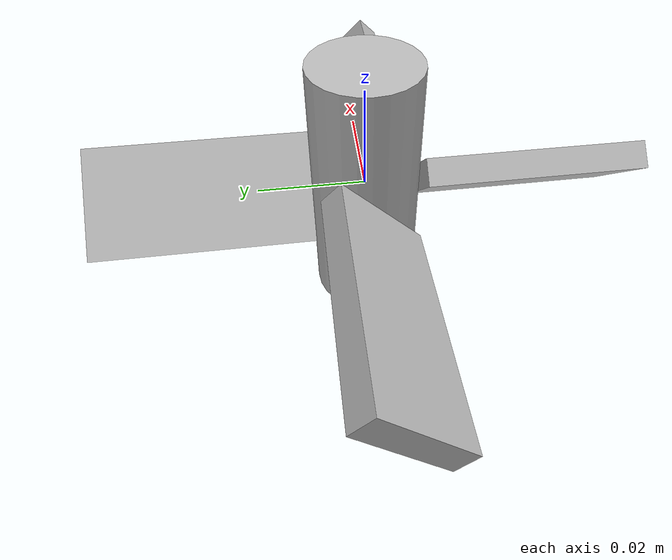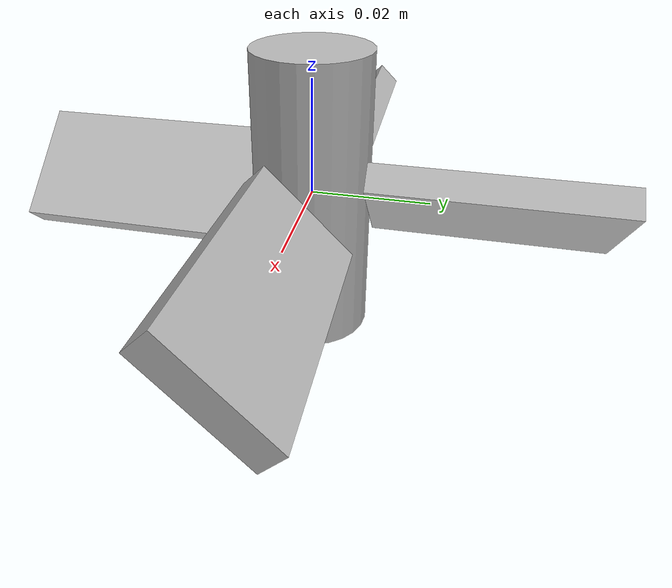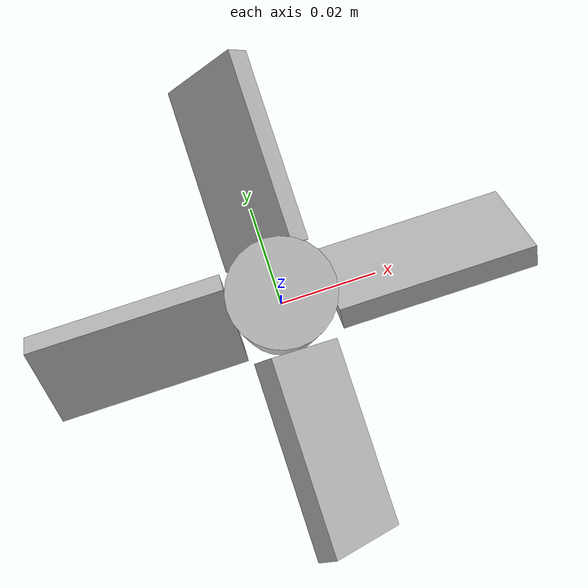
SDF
<?xml version="1.0" ?>
<sdf version="1.6">
  <world name="buoyancy">
    <model name="thruster">
      <pose>0 0 0 3.141592 0 0</pose>
      <link name='thruster_body'>
        <pose>0 0 0 0 0 0</pose>
        <inertial>
          <mass>0.5</mass>
          <inertia>
            <ixx>0.269653369</ixx>
            <ixy>0</ixy>
            <ixz>0</ixz>
            <iyy>0.269653369</iyy>
            <iyz>0</iyz>
            <izz>0.015707963</izz>
          </inertia>
        </inertial>

        <visual name='thruster_body_visual'>
          <geometry>
            <cylinder>
              <radius>0.01</radius>
              <length>0.05</length>
            </cylinder>
          </geometry>
        </visual>

        <collision name='thruster_body_collision'>
          <geometry>
            <cylinder>
              <radius>0.01</radius>
              <length>0.05</length>
            </cylinder>
          </geometry>
        </collision>
      </link>

      <link name='thruster_blade'>
        <pose>0 0 0 0 0 0</pose>
        <inertial>
          <mass>0.5</mass>
          <inertia>
            <ixx>0.1</ixx>
            <ixy>0</ixy>
            <ixz>0</ixz>
            <iyy>0.1</iyy>
            <iyz>0</iyz>
            <izz>0.2</izz>
          </inertia>
        </inertial>

        <visual name="blade1_visual">
          <pose>0.03 0.0 0 -0.7853981633974483 0 0.0</pose>
          <geometry>
            <box>
              <size>0.04 0.02 0.005</size>
            </box>
          </geometry>
        </visual>
        <collision name="blade1_collision">
          <pose>0.03 0.0 0 -0.7853981633974483 0 0.0</pose>
          <geometry>
            <box>
              <size>0.04 0.02 0.005</size>
            </box>
          </geometry>
        </collision>

        <visual name="blade2_visual">
          <pose>0.0 0.03 0 -0.7853981633974483 0 1.5707963267948966</pose>
          <geometry>
            <box>
              <size>0.04 0.02 0.005</size>
            </box>
          </geometry>
        </visual>
        <collision name="blade2_collision">
          <pose>0.0 0.03 0 -0.7853981633974483 0 1.5707963267948966</pose>
          <geometry>
            <box>
              <size>0.04 0.02 0.005</size>
            </box>
          </geometry>
        </collision>

        <visual name="blade3_visual">
          <pose>-0.03 -0.0 0 0.7853981633974483 0 0.0</pose>
          <geometry>
            <box>
              <size>0.04 0.02 0.005</size>
            </box>
          </geometry>
        </visual>
        <collision name="blade3_collision">
          <pose>-0.03 -0.0 0 0.7853981633974483 0 0.0</pose>
          <geometry>
            <box>
              <size>0.04 0.02 0.005</size>
            </box>
          </geometry>
        </collision>

        <visual name="blade4_visual">
          <pose>-0.0 -0.03 0 0.7853981633974483 0 1.5707963267948966</pose>
          <geometry>
            <box>
              <size>0.04 0.02 0.005</size>
            </box>
          </geometry>
        </visual>
        <collision name="blade4_collision">
          <pose>-0.0 -0.03 0 0.7853981633974483 0 1.5707963267948966</pose>
          <geometry>
            <box>
              <size>0.04 0.02 0.005</size>
            </box>
          </geometry>
        </collision>
      </link>

      <joint name='thruster_body_blade_joint' type='revolute'>
        <parent>thruster_body</parent>
        <child>thruster_blade</child>
        <axis>
          <xyz>0 0 1</xyz>
          <use_parent_model_frame>1</use_parent_model_frame>
          <limit>
            <lower>-1e+12</lower>
            <upper>1e+12</upper>
            <effort>-1</effort>
            <velocity>-1</velocity>
          </limit>
        </axis>
      </joint>

      <plugin
        filename="ignition-gazebo-lift-drag-system"
        name="ignition::gazebo::systems::LiftDrag">
        <air_density>1000</air_density>
        <cla>1.2535816618911175</cla>
        <cla_stall>-1.4326647564469914</cla_stall>
        <cda>0</cda>
        <cda_stall>1.4326647564469914</cda_stall>
        <alpha_stall>1.396</alpha_stall>
        <a0>0</a0>
        <area>0.27637</area>
        <upward>0 -0.707106781186547 -0.707106781186547</upward>
        <forward>0 -0.707106781186547 0.707106781186547</forward>
        <link_name>thruster_blade</link_name>
        <cp>0.35 0 0</cp>
      </plugin>

      <plugin
        filename="ignition-gazebo-lift-drag-system"
        name="ignition::gazebo::systems::LiftDrag">
        <air_density>1000</air_density>
        <cla>1.2535816618911175</cla>
        <cla_stall>-1.4326647564469914</cla_stall>
        <cda>0</cda>
        <cda_stall>1.4326647564469914</cda_stall>
        <alpha_stall>1.396</alpha_stall>
        <a0>0</a0>
        <area>0.27637</area>
        <upward>-0.707106781186547 0 -0.707106781186547</upward>
        <forward>-0.707106781186547 0 0.707106781186547</forward>
        <link_name>thruster_blade</link_name>
        <cp>0 -0.35 0</cp>
      </plugin>

      <plugin
        filename="ignition-gazebo-lift-drag-system"
        name="ignition::gazebo::systems::LiftDrag">

        <air_density>1000</air_density>
        <cla>1.2535816618911175</cla>
        <cla_stall>-1.4326647564469914</cla_stall>
        <cda>0</cda>
        <cda_stall>1.4326647564469914</cda_stall>
        <alpha_stall>1.396</alpha_stall>
        <a0>0</a0>
        <area>0.27637</area>
        <upward>0 0.707106781186547 -0.707106781186547</upward>
        <forward>0 -0.707106781186547 -0.707106781186547</forward>
        <link_name>thruster_blade</link_name>
        <cp>-0.35 0 0</cp>
      </plugin>

      <plugin
        filename="ignition-gazebo-lift-drag-system"
        name="ignition::gazebo::systems::LiftDrag">

        <air_density>1000</air_density>
        <cla>1.2535816618911175</cla>
        <cla_stall>-1.4326647564469914</cla_stall>
        <cda>0</cda>
        <cda_stall>1.4326647564469914</cda_stall>
        <alpha_stall>1.396</alpha_stall>
        <a0>0</a0>
        <area>0.27637</area>
        <upward>0.707106781186547 0 -0.707106781186547</upward>
        <forward>0.707106781186547 0 0.707106781186547</forward>
        <link_name>thruster_blade</link_name>
        <cp>0 0.35 0</cp>
      </plugin>

      <plugin
        filename="ignition-gazebo-apply-joint-force-system"
        name="ignition::gazebo::systems::ApplyJointForce">
        <joint_name>thruster_top_front_left_joint</joint_name>
      </plugin>
    </model>
  </world>
</sdf>
